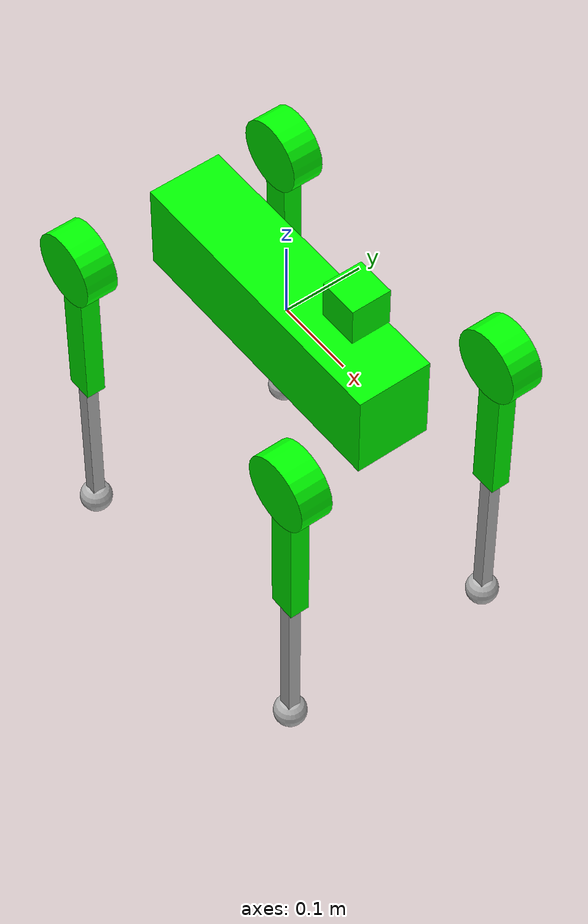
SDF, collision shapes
<?xml version='1.0' encoding='utf-8'?>
<sdf version="1.9">
  <model name="go2_semantic_omni">
    <link name="base">
      <inertial>
        <pose>0.02021629641827912 -1.190286452570884e-19 -0.004924946617263619 0 0 0</pose>
        <mass>7.2870000000000017</mass>
        <inertia>
          <ixx>0.025885214311730229</ixx>
          <ixy>0.00012166</ixy>
          <ixz>0.001393435087171307</ixz>
          <iyy>0.103223624876722</iyy>
          <iyz>-3.1199999999999993e-05</iyz>
          <izz>0.1127458990649917</izz>
        </inertia>
      </inertial>
      <collision name="base_fixed_joint_lump__trunk_collision">
        <pose>0 0 0 0 0 0</pose>
        <geometry>
          <box>
            <size>0.3762 0.0935 0.114</size>
          </box>
        </geometry>
        <surface>
          <contact>
            <ode>
              <kp>1000000</kp>
              <kd>1</kd>
            </ode>
          </contact>
          <friction>
            <ode>
              <mu>0.20000000000000001</mu>
              <mu2>0.20000000000000001</mu2>
            </ode>
          </friction>
        </surface>
      </collision>
      <collision name="base_fixed_joint_lump__imu_link_collision_1">
        <pose>0.12 0 0.125 0 0 0</pose>
        <geometry>
          <box>
            <size>0.05 0.05 0.05</size>
          </box>
        </geometry>
        <surface>
          <contact>
            <ode />
          </contact>
          <friction>
            <ode>
              <mu>0.20000000000000001</mu>
              <mu2>0.20000000000000001</mu2>
            </ode>
          </friction>
        </surface>
      </collision>
      <visual name="base_visual">
        <pose>0 0 0 0 0 0</pose>
        <geometry>
          <box>
            <size>0.001 0.001 0.001</size>
          </box>
        </geometry>
      </visual>
      <visual name="base_fixed_joint_lump__trunk_visual_1">
        <pose>0 0 0 0 0 0</pose>
        <geometry>
          <mesh>
            <scale>1 1 1</scale>
            <uri>model://go2_semantic/meshes/trunk.dae</uri>
          </mesh>
        </geometry>
      </visual>
      <visual name="base_fixed_joint_lump__FL_hip_rotor_visual_2">
        <pose>0.11215 0.04675 0 0 1.570796326794897 0</pose>
        <geometry>
          <cylinder>
            <length>0.02</length>
            <radius>0.035000000000000003</radius>
          </cylinder>
        </geometry>
        <material>
          <diffuse>0 1 0 1</diffuse>
          <ambient>0 1 0 1</ambient>
        </material>
      </visual>
      <visual name="base_fixed_joint_lump__FR_hip_rotor_visual_3">
        <pose>0.11215 -0.04675 0 0 1.570796326794897 0</pose>
        <geometry>
          <cylinder>
            <length>0.02</length>
            <radius>0.035000000000000003</radius>
          </cylinder>
        </geometry>
        <material>
          <diffuse>0 1 0 1</diffuse>
          <ambient>0 1 0 1</ambient>
        </material>
      </visual>
      <visual name="base_fixed_joint_lump__RL_hip_rotor_visual_4">
        <pose>-0.11215 0.04675 0 0 1.570796326794897 0</pose>
        <geometry>
          <cylinder>
            <length>0.02</length>
            <radius>0.035000000000000003</radius>
          </cylinder>
        </geometry>
        <material>
          <diffuse>0 1 0 1</diffuse>
          <ambient>0 1 0 1</ambient>
        </material>
      </visual>
      <visual name="base_fixed_joint_lump__RR_hip_rotor_visual_5">
        <pose>-0.11215 -0.04675 0 0 1.570796326794897 0</pose>
        <geometry>
          <cylinder>
            <length>0.02</length>
            <radius>0.035000000000000003</radius>
          </cylinder>
        </geometry>
        <material>
          <diffuse>0 1 0 1</diffuse>
          <ambient>0 1 0 1</ambient>
        </material>
      </visual>
      <visual name="base_fixed_joint_lump__imu_link_visual_6">
        <pose>0.12 0 0.125 0 0 0</pose>
        <geometry>
          <box>
            <size>0.05 0.05 0.05</size>
          </box>
        </geometry>
        <material>
          <diffuse>0 1 0 1</diffuse>
          <ambient>0 1 0 1</ambient>
        </material>
      </visual>
      <gravity>true</gravity>
      <gravity>true</gravity>
      <sensor name="imu_sensor" type="imu">
        <always_on>true</always_on>
        <update_rate>100</update_rate>
        <visualize>true</visualize>
        <topic>__default_topic__</topic>
        <pose>0.12 0 0.125 0 -0 0</pose>
      </sensor>
      <sensor name="trunk_imu" type="imu">
        <pose>0.12 0 0.125 0 0 0</pose>
        <topic>/trunk_imu</topic>
        <always_on>1</always_on>
        <update_rate>200</update_rate>
        <visualize>false</visualize>
      </sensor>
      <sensor name="rgbd_camera" type="rgbd_camera">
        <pose relative_to="camera_mount">0 0 0 0 0 0</pose>
        <camera>
          <horizontal_fov>1.745329252</horizontal_fov>
          <image>
            <width>480</width>
            <height>270</height>
          </image>
          <clip>
            <near>0.10</near>
            <far>30.0</far>
          </clip>
          <lens>
            <intrinsics>
              <fx>201.384</fx>
              <fy>201.384</fy>
              <cx>240</cx>
              <cy>135</cy>
              <skew>0</skew>
            </intrinsics>
          </lens>
        </camera>
        <always_on>1</always_on>
        <update_rate>10</update_rate>
        <visualize>false</visualize>
        <topic>rgbd_camera</topic>
      </sensor>
      <sensor name="semantic_segmentation_camera" type="segmentation">
        <pose relative_to="camera_mount">0 0 0 0 0 0</pose>
        <topic>semantic</topic>
        <camera>
          <segmentation_type>semantic</segmentation_type>
          <horizontal_fov>1.745329252</horizontal_fov>
          <image>
            <width>480</width>
            <height>270</height>
          </image>
          <clip>
            <near>0.10</near>
            <far>30.0</far>
          </clip>
          <lens>
            <intrinsics>
              <fx>201.384</fx>
              <fy>201.384</fy>
              <cx>240</cx>
              <cy>135</cy>
              <skew>0</skew>
            </intrinsics>
          </lens>
        </camera>
        <always_on>1</always_on>
        <update_rate>10</update_rate>
        <visualize>false</visualize>
      </sensor>
      <sensor name="rgbd_left_camera" type="rgbd_camera">
        <pose relative_to="camera_mount_left">0 0 0 0 0 0</pose>
        <camera>
          <horizontal_fov>1.745329252</horizontal_fov>
          <image>
            <width>480</width>
            <height>270</height>
          </image>
          <clip>
            <near>0.10</near>
            <far>30.0</far>
          </clip>
          <lens>
            <intrinsics>
              <fx>201.384</fx>
              <fy>201.384</fy>
              <cx>240</cx>
              <cy>135</cy>
              <skew>0</skew>
            </intrinsics>
          </lens>
        </camera>
        <always_on>1</always_on>
        <update_rate>10</update_rate>
        <visualize>false</visualize>
        <topic>rgbd_left</topic>
      </sensor>
      <sensor name="semantic_left_camera" type="segmentation">
        <pose relative_to="camera_mount_left">0 0 0 0 0 0</pose>
        <topic>semantic_left</topic>
        <camera>
          <segmentation_type>semantic</segmentation_type>
          <horizontal_fov>1.745329252</horizontal_fov>
          <image>
            <width>480</width>
            <height>270</height>
          </image>
          <clip>
            <near>0.10</near>
            <far>30.0</far>
          </clip>
          <lens>
            <intrinsics>
              <fx>201.384</fx>
              <fy>201.384</fy>
              <cx>240</cx>
              <cy>135</cy>
              <skew>0</skew>
            </intrinsics>
          </lens>
        </camera>
        <always_on>1</always_on>
        <update_rate>10</update_rate>
        <visualize>false</visualize>
      </sensor>
      <sensor name="rgbd_rear_camera" type="rgbd_camera">
        <pose relative_to="camera_mount_rear">0 0 0 0 0 0</pose>
        <camera>
          <horizontal_fov>1.745329252</horizontal_fov>
          <image>
            <width>480</width>
            <height>270</height>
          </image>
          <clip>
            <near>0.10</near>
            <far>30.0</far>
          </clip>
          <lens>
            <intrinsics>
              <fx>201.384</fx>
              <fy>201.384</fy>
              <cx>240</cx>
              <cy>135</cy>
              <skew>0</skew>
            </intrinsics>
          </lens>
        </camera>
        <always_on>1</always_on>
        <update_rate>10</update_rate>
        <visualize>false</visualize>
        <topic>rgbd_rear</topic>
      </sensor>
      <sensor name="semantic_rear_camera" type="segmentation">
        <pose relative_to="camera_mount_rear">0 0 0 0 0 0</pose>
        <topic>semantic_rear</topic>
        <camera>
          <segmentation_type>semantic</segmentation_type>
          <horizontal_fov>1.745329252</horizontal_fov>
          <image>
            <width>480</width>
            <height>270</height>
          </image>
          <clip>
            <near>0.10</near>
            <far>30.0</far>
          </clip>
          <lens>
            <intrinsics>
              <fx>201.384</fx>
              <fy>201.384</fy>
              <cx>240</cx>
              <cy>135</cy>
              <skew>0</skew>
            </intrinsics>
          </lens>
        </camera>
        <always_on>1</always_on>
        <update_rate>10</update_rate>
        <visualize>false</visualize>
      </sensor>
      <sensor name="rgbd_right_camera" type="rgbd_camera">
        <pose relative_to="camera_mount_right">0 0 0 0 0 0</pose>
        <camera>
          <horizontal_fov>1.745329252</horizontal_fov>
          <image>
            <width>480</width>
            <height>270</height>
          </image>
          <clip>
            <near>0.10</near>
            <far>30.0</far>
          </clip>
          <lens>
            <intrinsics>
              <fx>201.384</fx>
              <fy>201.384</fy>
              <cx>240</cx>
              <cy>135</cy>
              <skew>0</skew>
            </intrinsics>
          </lens>
        </camera>
        <always_on>1</always_on>
        <update_rate>10</update_rate>
        <visualize>false</visualize>
        <topic>rgbd_right</topic>
      </sensor>
      <sensor name="semantic_right_camera" type="segmentation">
        <pose relative_to="camera_mount_right">0 0 0 0 0 0</pose>
        <topic>semantic_right</topic>
        <camera>
          <segmentation_type>semantic</segmentation_type>
          <horizontal_fov>1.745329252</horizontal_fov>
          <image>
            <width>480</width>
            <height>270</height>
          </image>
          <clip>
            <near>0.10</near>
            <far>30.0</far>
          </clip>
          <lens>
            <intrinsics>
              <fx>201.384</fx>
              <fy>201.384</fy>
              <cx>240</cx>
              <cy>135</cy>
              <skew>0</skew>
            </intrinsics>
          </lens>
        </camera>
        <always_on>1</always_on>
        <update_rate>10</update_rate>
        <visualize>false</visualize>
      </sensor>
    </link>
    <!-- Single source of truth for both RGB-D and semantic camera extrinsics. -->
    <joint name="FL_hip_joint" type="revolute">
      <pose relative_to="base">0.1934 0.0465 0 0 0 0</pose>
      <parent>base</parent>
      <child>FL_hip</child>
      <axis>
        <xyz>1 0 0</xyz>
        <limit>
          <lower>-1.0471999999999999</lower>
          <upper>1.0471999999999999</upper>
          <effort>23.699999999999999</effort>
          <velocity>30.100000000000001</velocity>
        </limit>
        <dynamics>
          <damping>0.2</damping>
          <friction>0.05</friction>
          <spring_reference>0.1</spring_reference>
          <spring_stiffness>0</spring_stiffness>
        </dynamics>
        <initial_position>0.1</initial_position>
      </axis>
    </joint>
    <link name="FL_hip">
      <pose relative_to="FL_hip_joint">0 0 0 0 0 0</pose>
      <inertial>
        <pose>-0.004773402868318123 0.00169748370273794 -9.281616688396352e-05 0 0 0</pose>
        <mass>0.76700000000000002</mass>
        <inertia>
          <ixx>0.00053999151781062584</ixx>
          <ixy>-2.1220993324641449e-06</ixy>
          <ixz>1.0653925501955671e-06</ixz>
          <iyy>0.00099813696478559337</iyy>
          <iyz>-1.4027352647979141e-06</iyz>
          <izz>0.00065828474786205991</izz>
        </inertia>
      </inertial>
      <collision name="FL_hip_collision">
        <pose>0 0.0955 0 1.570796326794896 0 0</pose>
        <geometry>
          <cylinder>
            <length>0.040000000000000001</length>
            <radius>0.045999999999999999</radius>
          </cylinder>
        </geometry>
        <surface>
          <contact>
            <ode />
          </contact>
          <friction>
            <ode>
              <mu>0.20000000000000001</mu>
              <mu2>0.20000000000000001</mu2>
            </ode>
          </friction>
        </surface>
      </collision>
      <visual name="FL_hip_visual">
        <pose>0 0 0 0 0 0</pose>
        <geometry>
          <mesh>
            <scale>1 1 1</scale>
            <uri>model://go2_semantic/meshes/hip.dae</uri>
          </mesh>
        </geometry>
      </visual>
      <visual name="FL_hip_fixed_joint_lump__FL_thigh_rotor_visual_1">
        <pose>0 -0.00015 0 1.570796326794896 0 0</pose>
        <geometry>
          <cylinder>
            <length>0.02</length>
            <radius>0.035000000000000003</radius>
          </cylinder>
        </geometry>
        <material>
          <diffuse>0 1 0 1</diffuse>
          <ambient>0 1 0 1</ambient>
        </material>
      </visual>
    </link>
    <joint name="FL_thigh_joint" type="revolute">
      <pose relative_to="FL_hip">0 0.0955 0 0 0 0</pose>
      <parent>FL_hip</parent>
      <child>FL_thigh</child>
      <axis>
        <xyz>0 1 0</xyz>
        <limit>
          <lower>-1.5708</lower>
          <upper>3.4906999999999999</upper>
          <effort>23.699999999999999</effort>
          <velocity>30.100000000000001</velocity>
        </limit>
        <dynamics>
          <damping>0.2</damping>
          <friction>0.05</friction>
          <spring_reference>0.8</spring_reference>
          <spring_stiffness>0</spring_stiffness>
        </dynamics>
        <initial_position>0.8</initial_position>
      </axis>
    </joint>
    <link name="FL_thigh">
      <pose relative_to="FL_thigh_joint">0 0 0 0 0 0</pose>
      <inertial>
        <pose>-0.003471780821917808 -0.02302074939564867 -0.03035487510072523 0 0 0</pose>
        <mass>1.2410000000000001</mass>
        <inertia>
          <ixx>0.0059963333412087023</ixx>
          <ixy>9.0305334356164388e-05</ixy>
          <ixz>-0.00029910392372602731</ixz>
          <iyy>0.0060013394099700237</iyy>
          <iyz>0.00083515091803384382</iyz>
          <izz>0.0010991471651674461</izz>
        </inertia>
      </inertial>
      <collision name="FL_thigh_collision">
        <pose>0 0 -0.1065 0 1.570796326794897 0</pose>
        <geometry>
          <box>
            <size>0.213 0.0245 0.034</size>
          </box>
        </geometry>
        <surface>
          <contact>
            <ode>
              <kp>1000000</kp>
              <kd>1</kd>
            </ode>
          </contact>
          <friction>
            <ode>
              <mu>0.20000000000000001</mu>
              <mu2>0.20000000000000001</mu2>
            </ode>
          </friction>
        </surface>
      </collision>
      <visual name="FL_thigh_visual">
        <pose>0 0 0 0 0 0</pose>
        <geometry>
          <mesh>
            <scale>1 1 1</scale>
            <uri>model://go2_semantic/meshes/thigh.dae</uri>
          </mesh>
        </geometry>
      </visual>
      <visual name="FL_thigh_fixed_joint_lump__FL_calf_rotor_visual_1">
        <pose>0 -0.03235 0 1.570796326794896 0 0</pose>
        <geometry>
          <cylinder>
            <length>0.02</length>
            <radius>0.035000000000000003</radius>
          </cylinder>
        </geometry>
        <material>
          <diffuse>0 1 0 1</diffuse>
          <ambient>0 1 0 1</ambient>
        </material>
      </visual>
      <self_collide>true</self_collide>
    </link>
    <joint name="FL_calf_joint" type="revolute">
      <pose relative_to="FL_thigh">0 0 -0.213 0 0 0</pose>
      <parent>FL_thigh</parent>
      <child>FL_calf</child>
      <axis>
        <xyz>0 1 0</xyz>
        <limit>
          <lower>-2.7227000000000001</lower>
          <upper>-0.83775999999999995</upper>
          <effort>35.549999999999997</effort>
          <velocity>20.059999999999999</velocity>
        </limit>
        <dynamics>
          <damping>0.2</damping>
          <friction>0.05</friction>
          <spring_reference>-1.5</spring_reference>
          <spring_stiffness>0</spring_stiffness>
        </dynamics>
        <initial_position>-1.5</initial_position>
      </axis>
    </joint>
    <link name="FL_calf">
      <pose relative_to="FL_calf_joint">0 0 0 0 0 0</pose>
      <inertial>
        <pose>0.003943551401869159 -0.0007016355140186916 -0.1424766355140187 0 0 0</pose>
        <mass>0.214</mass>
        <inertia>
          <ixx>0.001504318428855141</ixx>
          <ixy>5.7069775700934575e-07</ixy>
          <ixz>-5.9880822429906407e-06</ixz>
          <iyy>0.001525574022878506</iyy>
          <iyz>1.240561682242991e-05</iyz>
          <izz>4.3837685378504683e-05</izz>
        </inertia>
      </inertial>
      <collision name="FL_calf_collision">
        <pose>0 0 -0.1065 0 1.570796326794897 0</pose>
        <geometry>
          <box>
            <size>0.213 0.016 0.016</size>
          </box>
        </geometry>
        <surface>
          <contact>
            <ode />
          </contact>
          <friction>
            <ode>
              <mu>0.20000000000000001</mu>
              <mu2>0.20000000000000001</mu2>
            </ode>
          </friction>
        </surface>
      </collision>
      <collision name="FL_calf_fixed_joint_lump__FL_foot_collision_1">
        <pose>0 0 -0.213 0 0 0</pose>
        <geometry>
          <sphere>
            <radius>0.02</radius>
          </sphere>
        </geometry>
        <surface>
          <contact>
            <ode>
              <kp>1000000</kp>
              <kd>1</kd>
            </ode>
          </contact>
          <friction>
            <ode>
              <mu>0.59999999999999998</mu>
              <mu2>0.59999999999999998</mu2>
            </ode>
          </friction>
        </surface>
      </collision>
      <visual name="FL_calf_visual">
        <pose>0 0 0 0 0 0</pose>
        <geometry>
          <mesh>
            <scale>1 1 1</scale>
            <uri>model://go2_semantic/meshes/calf.dae</uri>
          </mesh>
        </geometry>
      </visual>
      <visual name="FL_calf_fixed_joint_lump__FL_foot_visual_1">
        <pose>0 0 -0.213 0 0 0</pose>
        <geometry>
          <sphere>
            <radius>0.01</radius>
          </sphere>
        </geometry>
      </visual>
      <sensor name="FL_foot_contact" type="contact">
        <update_rate>100</update_rate>
        <contact>
          <collision>FL_calf_fixed_joint_lump__FL_foot_collision_1</collision>
          <topic>__default_topic__</topic>
        </contact>
      </sensor>
      <self_collide>true</self_collide>
      <self_collide>true</self_collide>
    </link>
    <joint name="FR_hip_joint" type="revolute">
      <pose relative_to="base">0.1934 -0.0465 0 0 0 0</pose>
      <parent>base</parent>
      <child>FR_hip</child>
      <axis>
        <xyz>1 0 0</xyz>
        <limit>
          <lower>-1.0471999999999999</lower>
          <upper>1.0471999999999999</upper>
          <effort>23.699999999999999</effort>
          <velocity>30.100000000000001</velocity>
        </limit>
        <dynamics>
          <damping>0.2</damping>
          <friction>0.05</friction>
          <spring_reference>-0.1</spring_reference>
          <spring_stiffness>0</spring_stiffness>
        </dynamics>
        <initial_position>-0.1</initial_position>
      </axis>
    </joint>
    <link name="FR_hip">
      <pose relative_to="FR_hip_joint">0 0 0 0 0 0</pose>
      <inertial>
        <pose>-0.004773402868318123 -0.00169748370273794 -9.281616688396352e-05 0 0 0</pose>
        <mass>0.76700000000000002</mass>
        <inertia>
          <ixx>0.00053999151781062584</ixx>
          <ixy>2.1220993324641449e-06</ixy>
          <ixz>1.0653925501955671e-06</ixz>
          <iyy>0.00099813696478559337</iyy>
          <iyz>1.4027352647979141e-06</iyz>
          <izz>0.00065828474786205991</izz>
        </inertia>
      </inertial>
      <collision name="FR_hip_collision">
        <pose>0 -0.0955 0 1.570796326794896 0 0</pose>
        <geometry>
          <cylinder>
            <length>0.040000000000000001</length>
            <radius>0.045999999999999999</radius>
          </cylinder>
        </geometry>
        <surface>
          <contact>
            <ode />
          </contact>
          <friction>
            <ode>
              <mu>0.20000000000000001</mu>
              <mu2>0.20000000000000001</mu2>
            </ode>
          </friction>
        </surface>
      </collision>
      <visual name="FR_hip_visual">
        <pose>0 0 0 3.141592653589793 0 0</pose>
        <geometry>
          <mesh>
            <scale>1 1 1</scale>
            <uri>model://go2_semantic/meshes/hip.dae</uri>
          </mesh>
        </geometry>
      </visual>
      <visual name="FR_hip_fixed_joint_lump__FR_thigh_rotor_visual_1">
        <pose>0 0.00015 0 1.570796326794896 0 0</pose>
        <geometry>
          <cylinder>
            <length>0.02</length>
            <radius>0.035000000000000003</radius>
          </cylinder>
        </geometry>
        <material>
          <diffuse>0 1 0 1</diffuse>
          <ambient>0 1 0 1</ambient>
        </material>
      </visual>
    </link>
    <joint name="FR_thigh_joint" type="revolute">
      <pose relative_to="FR_hip">0 -0.0955 0 0 0 0</pose>
      <parent>FR_hip</parent>
      <child>FR_thigh</child>
      <axis>
        <xyz>0 1 0</xyz>
        <limit>
          <lower>-1.5708</lower>
          <upper>3.4906999999999999</upper>
          <effort>23.699999999999999</effort>
          <velocity>30.100000000000001</velocity>
        </limit>
        <dynamics>
          <damping>0.2</damping>
          <friction>0.05</friction>
          <spring_reference>0.8</spring_reference>
          <spring_stiffness>0</spring_stiffness>
        </dynamics>
        <initial_position>0.8</initial_position>
      </axis>
    </joint>
    <link name="FR_thigh">
      <pose relative_to="FR_thigh_joint">0 0 0 0 0 0</pose>
      <inertial>
        <pose>-0.003471780821917808 0.02302074939564867 -0.03035487510072523 0 0 0</pose>
        <mass>1.2410000000000001</mass>
        <inertia>
          <ixx>0.0059963333412087023</ixx>
          <ixy>-9.0305334356164388e-05</ixy>
          <ixz>-0.00029910392372602731</ixz>
          <iyy>0.0060013394099700237</iyy>
          <iyz>-0.00083515091803384382</iyz>
          <izz>0.0010991471651674461</izz>
        </inertia>
      </inertial>
      <collision name="FR_thigh_collision">
        <pose>0 0 -0.1065 0 1.570796326794897 0</pose>
        <geometry>
          <box>
            <size>0.213 0.0245 0.034</size>
          </box>
        </geometry>
        <surface>
          <contact>
            <ode>
              <kp>1000000</kp>
              <kd>1</kd>
            </ode>
          </contact>
          <friction>
            <ode>
              <mu>0.20000000000000001</mu>
              <mu2>0.20000000000000001</mu2>
            </ode>
          </friction>
        </surface>
      </collision>
      <visual name="FR_thigh_visual">
        <pose>0 0 0 0 0 0</pose>
        <geometry>
          <mesh>
            <scale>1 1 1</scale>
            <uri>model://go2_semantic/meshes/thigh_mirror.dae</uri>
          </mesh>
        </geometry>
      </visual>
      <visual name="FR_thigh_fixed_joint_lump__FR_calf_rotor_visual_1">
        <pose>0 0.03235 0 1.570796326794896 0 0</pose>
        <geometry>
          <cylinder>
            <length>0.02</length>
            <radius>0.035000000000000003</radius>
          </cylinder>
        </geometry>
        <material>
          <diffuse>0 1 0 1</diffuse>
          <ambient>0 1 0 1</ambient>
        </material>
      </visual>
      <self_collide>true</self_collide>
    </link>
    <joint name="FR_calf_joint" type="revolute">
      <pose relative_to="FR_thigh">0 0 -0.213 0 0 0</pose>
      <parent>FR_thigh</parent>
      <child>FR_calf</child>
      <axis>
        <xyz>0 1 0</xyz>
        <limit>
          <lower>-2.7227000000000001</lower>
          <upper>-0.83775999999999995</upper>
          <effort>35.549999999999997</effort>
          <velocity>20.059999999999999</velocity>
        </limit>
        <dynamics>
          <damping>0.2</damping>
          <friction>0.05</friction>
          <spring_reference>-1.5</spring_reference>
          <spring_stiffness>0</spring_stiffness>
        </dynamics>
        <initial_position>-1.5</initial_position>
      </axis>
    </joint>
    <link name="FR_calf">
      <pose relative_to="FR_calf_joint">0 0 0 0 0 0</pose>
      <inertial>
        <pose>0.003943551401869159 -0.0007016355140186916 -0.1424766355140187 0 0 0</pose>
        <mass>0.214</mass>
        <inertia>
          <ixx>0.001504318428855141</ixx>
          <ixy>5.7069775700934575e-07</ixy>
          <ixz>-5.9880822429906407e-06</ixz>
          <iyy>0.001525574022878506</iyy>
          <iyz>1.240561682242991e-05</iyz>
          <izz>4.3837685378504683e-05</izz>
        </inertia>
      </inertial>
      <collision name="FR_calf_collision">
        <pose>0 0 -0.1065 0 1.570796326794897 0</pose>
        <geometry>
          <box>
            <size>0.213 0.016 0.016</size>
          </box>
        </geometry>
        <surface>
          <contact>
            <ode />
          </contact>
          <friction>
            <ode>
              <mu>0.20000000000000001</mu>
              <mu2>0.20000000000000001</mu2>
            </ode>
          </friction>
        </surface>
      </collision>
      <collision name="FR_calf_fixed_joint_lump__FR_foot_collision_1">
        <pose>0 0 -0.213 0 0 0</pose>
        <geometry>
          <sphere>
            <radius>0.02</radius>
          </sphere>
        </geometry>
        <surface>
          <contact>
            <ode>
              <kp>1000000</kp>
              <kd>1</kd>
            </ode>
          </contact>
          <friction>
            <ode>
              <mu>0.59999999999999998</mu>
              <mu2>0.59999999999999998</mu2>
            </ode>
          </friction>
        </surface>
      </collision>
      <visual name="FR_calf_visual">
        <pose>0 0 0 0 0 0</pose>
        <geometry>
          <mesh>
            <scale>1 1 1</scale>
            <uri>model://go2_semantic/meshes/calf.dae</uri>
          </mesh>
        </geometry>
      </visual>
      <visual name="FR_calf_fixed_joint_lump__FR_foot_visual_1">
        <pose>0 0 -0.213 0 0 0</pose>
        <geometry>
          <sphere>
            <radius>0.01</radius>
          </sphere>
        </geometry>
      </visual>
      <sensor name="FR_foot_contact" type="contact">
        <update_rate>100</update_rate>
        <contact>
          <collision>FR_calf_fixed_joint_lump__FR_foot_collision_1</collision>
          <topic>__default_topic__</topic>
        </contact>
      </sensor>
      <self_collide>true</self_collide>
      <self_collide>true</self_collide>
    </link>
    <joint name="RL_hip_joint" type="revolute">
      <pose relative_to="base">-0.1934 0.0465 0 0 0 0</pose>
      <parent>base</parent>
      <child>RL_hip</child>
      <axis>
        <xyz>1 0 0</xyz>
        <limit>
          <lower>-1.0471999999999999</lower>
          <upper>1.0471999999999999</upper>
          <effort>23.699999999999999</effort>
          <velocity>30.100000000000001</velocity>
        </limit>
        <dynamics>
          <damping>0.2</damping>
          <friction>0.05</friction>
          <spring_reference>0.1</spring_reference>
          <spring_stiffness>0</spring_stiffness>
        </dynamics>
        <initial_position>0.1</initial_position>
      </axis>
    </joint>
    <link name="RL_hip">
      <pose relative_to="RL_hip_joint">0 0 0 0 0 0</pose>
      <inertial>
        <pose>0.004773402868318123 0.00169748370273794 -9.281616688396352e-05 0 0 0</pose>
        <mass>0.76700000000000002</mass>
        <inertia>
          <ixx>0.00053999151781062584</ixx>
          <ixy>2.1220993324641449e-06</ixy>
          <ixz>-1.0653925501955671e-06</ixz>
          <iyy>0.00099813696478559337</iyy>
          <iyz>-1.4027352647979141e-06</iyz>
          <izz>0.00065828474786205991</izz>
        </inertia>
      </inertial>
      <collision name="RL_hip_collision">
        <pose>0 0.0955 0 1.570796326794896 0 0</pose>
        <geometry>
          <cylinder>
            <length>0.040000000000000001</length>
            <radius>0.045999999999999999</radius>
          </cylinder>
        </geometry>
        <surface>
          <contact>
            <ode />
          </contact>
          <friction>
            <ode>
              <mu>0.20000000000000001</mu>
              <mu2>0.20000000000000001</mu2>
            </ode>
          </friction>
        </surface>
      </collision>
      <visual name="RL_hip_visual">
        <pose>0 0 0 3.141592653589793 1.224646799147353e-16 3.141592653589793</pose>
        <geometry>
          <mesh>
            <scale>1 1 1</scale>
            <uri>model://go2_semantic/meshes/hip.dae</uri>
          </mesh>
        </geometry>
      </visual>
      <visual name="RL_hip_fixed_joint_lump__RL_thigh_rotor_visual_1">
        <pose>0 -0.00015 0 1.570796326794896 0 0</pose>
        <geometry>
          <cylinder>
            <length>0.02</length>
            <radius>0.035000000000000003</radius>
          </cylinder>
        </geometry>
        <material>
          <diffuse>0 1 0 1</diffuse>
          <ambient>0 1 0 1</ambient>
        </material>
      </visual>
    </link>
    <joint name="RL_thigh_joint" type="revolute">
      <pose relative_to="RL_hip">0 0.0955 0 0 0 0</pose>
      <parent>RL_hip</parent>
      <child>RL_thigh</child>
      <axis>
        <xyz>0 1 0</xyz>
        <limit>
          <lower>-1.5708</lower>
          <upper>3.4906999999999999</upper>
          <effort>23.699999999999999</effort>
          <velocity>30.100000000000001</velocity>
        </limit>
        <dynamics>
          <damping>0.2</damping>
          <friction>0.05</friction>
          <spring_reference>1.0</spring_reference>
          <spring_stiffness>0</spring_stiffness>
        </dynamics>
        <initial_position>1.0</initial_position>
      </axis>
    </joint>
    <link name="RL_thigh">
      <pose relative_to="RL_thigh_joint">0 0 0 0 0 0</pose>
      <inertial>
        <pose>-0.003471780821917808 -0.02302074939564867 -0.03035487510072523 0 0 0</pose>
        <mass>1.2410000000000001</mass>
        <inertia>
          <ixx>0.0059963333412087023</ixx>
          <ixy>9.0305334356164388e-05</ixy>
          <ixz>-0.00029910392372602731</ixz>
          <iyy>0.0060013394099700237</iyy>
          <iyz>0.00083515091803384382</iyz>
          <izz>0.0010991471651674461</izz>
        </inertia>
      </inertial>
      <collision name="RL_thigh_collision">
        <pose>0 0 -0.1065 0 1.570796326794897 0</pose>
        <geometry>
          <box>
            <size>0.213 0.0245 0.034</size>
          </box>
        </geometry>
        <surface>
          <contact>
            <ode>
              <kp>1000000</kp>
              <kd>1</kd>
            </ode>
          </contact>
          <friction>
            <ode>
              <mu>0.20000000000000001</mu>
              <mu2>0.20000000000000001</mu2>
            </ode>
          </friction>
        </surface>
      </collision>
      <visual name="RL_thigh_visual">
        <pose>0 0 0 0 0 0</pose>
        <geometry>
          <mesh>
            <scale>1 1 1</scale>
            <uri>model://go2_semantic/meshes/thigh.dae</uri>
          </mesh>
        </geometry>
      </visual>
      <visual name="RL_thigh_fixed_joint_lump__RL_calf_rotor_visual_1">
        <pose>0 -0.03235 0 1.570796326794896 0 0</pose>
        <geometry>
          <cylinder>
            <length>0.02</length>
            <radius>0.035000000000000003</radius>
          </cylinder>
        </geometry>
        <material>
          <diffuse>0 1 0 1</diffuse>
          <ambient>0 1 0 1</ambient>
        </material>
      </visual>
      <self_collide>true</self_collide>
    </link>
    <joint name="RL_calf_joint" type="revolute">
      <pose relative_to="RL_thigh">0 0 -0.213 0 0 0</pose>
      <parent>RL_thigh</parent>
      <child>RL_calf</child>
      <axis>
        <xyz>0 1 0</xyz>
        <limit>
          <lower>-2.7227000000000001</lower>
          <upper>-0.83775999999999995</upper>
          <effort>35.549999999999997</effort>
          <velocity>20.059999999999999</velocity>
        </limit>
        <dynamics>
          <damping>0.2</damping>
          <friction>0.05</friction>
          <spring_reference>-1.5</spring_reference>
          <spring_stiffness>0</spring_stiffness>
        </dynamics>
        <initial_position>-1.5</initial_position>
      </axis>
    </joint>
    <link name="RL_calf">
      <pose relative_to="RL_calf_joint">0 0 0 0 0 0</pose>
      <inertial>
        <pose>0.003943551401869159 -0.0007016355140186916 -0.1424766355140187 0 0 0</pose>
        <mass>0.214</mass>
        <inertia>
          <ixx>0.001504318428855141</ixx>
          <ixy>5.7069775700934575e-07</ixy>
          <ixz>-5.9880822429906407e-06</ixz>
          <iyy>0.001525574022878506</iyy>
          <iyz>1.240561682242991e-05</iyz>
          <izz>4.3837685378504683e-05</izz>
        </inertia>
      </inertial>
      <collision name="RL_calf_collision">
        <pose>0 0 -0.1065 0 1.570796326794897 0</pose>
        <geometry>
          <box>
            <size>0.213 0.016 0.016</size>
          </box>
        </geometry>
        <surface>
          <contact>
            <ode />
          </contact>
          <friction>
            <ode>
              <mu>0.20000000000000001</mu>
              <mu2>0.20000000000000001</mu2>
            </ode>
          </friction>
        </surface>
      </collision>
      <collision name="RL_calf_fixed_joint_lump__RL_foot_collision_1">
        <pose>0 0 -0.213 0 0 0</pose>
        <geometry>
          <sphere>
            <radius>0.02</radius>
          </sphere>
        </geometry>
        <surface>
          <contact>
            <ode>
              <kp>1000000</kp>
              <kd>1</kd>
            </ode>
          </contact>
          <friction>
            <ode>
              <mu>0.59999999999999998</mu>
              <mu2>0.59999999999999998</mu2>
            </ode>
          </friction>
        </surface>
      </collision>
      <visual name="RL_calf_visual">
        <pose>0 0 0 0 0 0</pose>
        <geometry>
          <mesh>
            <scale>1 1 1</scale>
            <uri>model://go2_semantic/meshes/calf.dae</uri>
          </mesh>
        </geometry>
      </visual>
      <visual name="RL_calf_fixed_joint_lump__RL_foot_visual_1">
        <pose>0 0 -0.213 0 0 0</pose>
        <geometry>
          <sphere>
            <radius>0.01</radius>
          </sphere>
        </geometry>
      </visual>
      <sensor name="RL_foot_contact" type="contact">
        <update_rate>100</update_rate>
        <contact>
          <collision>RL_calf_fixed_joint_lump__RL_foot_collision_1</collision>
          <topic>__default_topic__</topic>
        </contact>
      </sensor>
      <self_collide>true</self_collide>
      <self_collide>true</self_collide>
    </link>
    <joint name="RR_hip_joint" type="revolute">
      <pose relative_to="base">-0.1934 -0.0465 0 0 0 0</pose>
      <parent>base</parent>
      <child>RR_hip</child>
      <axis>
        <xyz>1 0 0</xyz>
        <limit>
          <lower>-1.0471999999999999</lower>
          <upper>1.0471999999999999</upper>
          <effort>23.699999999999999</effort>
          <velocity>30.100000000000001</velocity>
        </limit>
        <dynamics>
          <damping>0.2</damping>
          <friction>0.05</friction>
          <spring_reference>-0.1</spring_reference>
          <spring_stiffness>0</spring_stiffness>
        </dynamics>
        <initial_position>-0.1</initial_position>
      </axis>
    </joint>
    <link name="RR_hip">
      <pose relative_to="RR_hip_joint">0 0 0 0 0 0</pose>
      <inertial>
        <pose>0.004773402868318123 -0.00169748370273794 -9.281616688396352e-05 0 0 0</pose>
        <mass>0.76700000000000002</mass>
        <inertia>
          <ixx>0.00053999151781062584</ixx>
          <ixy>-2.1220993324641449e-06</ixy>
          <ixz>-1.0653925501955671e-06</ixz>
          <iyy>0.00099813696478559337</iyy>
          <iyz>1.4027352647979141e-06</iyz>
          <izz>0.00065828474786205991</izz>
        </inertia>
      </inertial>
      <collision name="RR_hip_collision">
        <pose>0 -0.0955 0 1.570796326794896 0 0</pose>
        <geometry>
          <cylinder>
            <length>0.040000000000000001</length>
            <radius>0.045999999999999999</radius>
          </cylinder>
        </geometry>
        <surface>
          <contact>
            <ode />
          </contact>
          <friction>
            <ode>
              <mu>0.20000000000000001</mu>
              <mu2>0.20000000000000001</mu2>
            </ode>
          </friction>
        </surface>
      </collision>
      <visual name="RR_hip_visual">
        <pose>0 0 0 -1.224646799147353e-16 1.224646799147353e-16 3.141592653589793</pose>
        <geometry>
          <mesh>
            <scale>1 1 1</scale>
            <uri>model://go2_semantic/meshes/hip.dae</uri>
          </mesh>
        </geometry>
      </visual>
      <visual name="RR_hip_fixed_joint_lump__RR_thigh_rotor_visual_1">
        <pose>0 0.00015 0 1.570796326794896 0 0</pose>
        <geometry>
          <cylinder>
            <length>0.02</length>
            <radius>0.035000000000000003</radius>
          </cylinder>
        </geometry>
        <material>
          <diffuse>0 1 0 1</diffuse>
          <ambient>0 1 0 1</ambient>
        </material>
      </visual>
    </link>
    <joint name="RR_thigh_joint" type="revolute">
      <pose relative_to="RR_hip">0 -0.0955 0 0 0 0</pose>
      <parent>RR_hip</parent>
      <child>RR_thigh</child>
      <axis>
        <xyz>0 1 0</xyz>
        <limit>
          <lower>-1.5708</lower>
          <upper>3.4906999999999999</upper>
          <effort>23.699999999999999</effort>
          <velocity>30.100000000000001</velocity>
        </limit>
        <dynamics>
          <damping>0.2</damping>
          <friction>0.05</friction>
          <spring_reference>1.0</spring_reference>
          <spring_stiffness>0</spring_stiffness>
        </dynamics>
        <initial_position>1.0</initial_position>
      </axis>
    </joint>
    <link name="RR_thigh">
      <pose relative_to="RR_thigh_joint">0 0 0 0 0 0</pose>
      <inertial>
        <pose>-0.003471780821917808 0.02302074939564867 -0.03035487510072523 0 0 0</pose>
        <mass>1.2410000000000001</mass>
        <inertia>
          <ixx>0.0059963333412087023</ixx>
          <ixy>-9.0305334356164388e-05</ixy>
          <ixz>-0.00029910392372602731</ixz>
          <iyy>0.0060013394099700237</iyy>
          <iyz>-0.00083515091803384382</iyz>
          <izz>0.0010991471651674461</izz>
        </inertia>
      </inertial>
      <collision name="RR_thigh_collision">
        <pose>0 0 -0.1065 0 1.570796326794897 0</pose>
        <geometry>
          <box>
            <size>0.213 0.0245 0.034</size>
          </box>
        </geometry>
        <surface>
          <contact>
            <ode>
              <kp>1000000</kp>
              <kd>1</kd>
            </ode>
          </contact>
          <friction>
            <ode>
              <mu>0.20000000000000001</mu>
              <mu2>0.20000000000000001</mu2>
            </ode>
          </friction>
        </surface>
      </collision>
      <visual name="RR_thigh_visual">
        <pose>0 0 0 0 0 0</pose>
        <geometry>
          <mesh>
            <scale>1 1 1</scale>
            <uri>model://go2_semantic/meshes/thigh_mirror.dae</uri>
          </mesh>
        </geometry>
      </visual>
      <visual name="RR_thigh_fixed_joint_lump__RR_calf_rotor_visual_1">
        <pose>0 0.03235 0 1.570796326794896 0 0</pose>
        <geometry>
          <cylinder>
            <length>0.02</length>
            <radius>0.035000000000000003</radius>
          </cylinder>
        </geometry>
        <material>
          <diffuse>0 1 0 1</diffuse>
          <ambient>0 1 0 1</ambient>
        </material>
      </visual>
      <self_collide>true</self_collide>
    </link>
    <joint name="RR_calf_joint" type="revolute">
      <pose relative_to="RR_thigh">0 0 -0.213 0 0 0</pose>
      <parent>RR_thigh</parent>
      <child>RR_calf</child>
      <axis>
        <xyz>0 1 0</xyz>
        <limit>
          <lower>-2.7227000000000001</lower>
          <upper>-0.83775999999999995</upper>
          <effort>35.549999999999997</effort>
          <velocity>20.059999999999999</velocity>
        </limit>
        <dynamics>
          <damping>0.2</damping>
          <friction>0.05</friction>
          <spring_reference>-1.5</spring_reference>
          <spring_stiffness>0</spring_stiffness>
        </dynamics>
        <initial_position>-1.5</initial_position>
      </axis>
    </joint>
    <link name="RR_calf">
      <pose relative_to="RR_calf_joint">0 0 0 0 0 0</pose>
      <inertial>
        <pose>0.003943551401869159 -0.0007016355140186916 -0.1424766355140187 0 0 0</pose>
        <mass>0.214</mass>
        <inertia>
          <ixx>0.001504318428855141</ixx>
          <ixy>5.7069775700934575e-07</ixy>
          <ixz>-5.9880822429906407e-06</ixz>
          <iyy>0.001525574022878506</iyy>
          <iyz>1.240561682242991e-05</iyz>
          <izz>4.3837685378504683e-05</izz>
        </inertia>
      </inertial>
      <collision name="RR_calf_collision">
        <pose>0 0 -0.1065 0 1.570796326794897 0</pose>
        <geometry>
          <box>
            <size>0.213 0.016 0.016</size>
          </box>
        </geometry>
        <surface>
          <contact>
            <ode />
          </contact>
          <friction>
            <ode>
              <mu>0.20000000000000001</mu>
              <mu2>0.20000000000000001</mu2>
            </ode>
          </friction>
        </surface>
      </collision>
      <collision name="RR_calf_fixed_joint_lump__RR_foot_collision_1">
        <pose>0 0 -0.213 0 0 0</pose>
        <geometry>
          <sphere>
            <radius>0.02</radius>
          </sphere>
        </geometry>
        <surface>
          <contact>
            <ode>
              <kp>1000000</kp>
              <kd>1</kd>
            </ode>
          </contact>
          <friction>
            <ode>
              <mu>0.59999999999999998</mu>
              <mu2>0.59999999999999998</mu2>
            </ode>
          </friction>
        </surface>
      </collision>
      <visual name="RR_calf_visual">
        <pose>0 0 0 0 0 0</pose>
        <geometry>
          <mesh>
            <scale>1 1 1</scale>
            <uri>model://go2_semantic/meshes/calf.dae</uri>
          </mesh>
        </geometry>
      </visual>
      <visual name="RR_calf_fixed_joint_lump__RR_foot_visual_1">
        <pose>0 0 -0.213 0 0 0</pose>
        <geometry>
          <sphere>
            <radius>0.01</radius>
          </sphere>
        </geometry>
      </visual>
      <sensor name="RR_foot_contact" type="contact">
        <update_rate>100</update_rate>
        <contact>
          <collision>RR_calf_fixed_joint_lump__RR_foot_collision_1</collision>
          <topic>__default_topic__</topic>
        </contact>
      </sensor>
      <self_collide>true</self_collide>
      <self_collide>true</self_collide>
    </link>
    <frame name="FL_hip_rotor_joint" attached_to="trunk">
      <pose>0.11215 0.04675 0 0 -0 0</pose>
    </frame>
    <frame name="FL_hip_rotor" attached_to="FL_hip_rotor_joint" />
    <frame name="FR_hip_rotor_joint" attached_to="trunk">
      <pose>0.11215 -0.04675 0 0 -0 0</pose>
    </frame>
    <frame name="FR_hip_rotor" attached_to="FR_hip_rotor_joint" />
    <frame name="RL_hip_rotor_joint" attached_to="trunk">
      <pose>-0.11215 0.04675 0 0 -0 0</pose>
    </frame>
    <frame name="RL_hip_rotor" attached_to="RL_hip_rotor_joint" />
    <frame name="RR_hip_rotor_joint" attached_to="trunk">
      <pose>-0.11215 -0.04675 0 0 -0 0</pose>
    </frame>
    <frame name="RR_hip_rotor" attached_to="RR_hip_rotor_joint" />
    <frame name="imu_joint" attached_to="trunk">
      <pose>0.12 0 0.125 0 -0 0</pose>
    </frame>
    <frame name="imu_link" attached_to="imu_joint" />
    <frame name="floating_base" attached_to="base">
      <pose>0 0 0 0 -0 0</pose>
    </frame>
    <frame name="trunk" attached_to="floating_base" />
    <frame name="FL_thigh_rotor_joint" attached_to="FL_hip">
      <pose>0 -0.00015 0 0 -0 0</pose>
    </frame>
    <frame name="FL_thigh_rotor" attached_to="FL_thigh_rotor_joint" />
    <frame name="FL_calf_rotor_joint" attached_to="FL_thigh">
      <pose>0 -0.03235 0 0 -0 0</pose>
    </frame>
    <frame name="FL_calf_rotor" attached_to="FL_calf_rotor_joint" />
    <frame name="FL_foot_fixed" attached_to="FL_calf">
      <pose>0 0 -0.213 0 -0 0</pose>
    </frame>
    <frame name="FL_foot" attached_to="FL_foot_fixed" />
    <frame name="FR_thigh_rotor_joint" attached_to="FR_hip">
      <pose>0 0.00015 0 0 -0 0</pose>
    </frame>
    <frame name="FR_thigh_rotor" attached_to="FR_thigh_rotor_joint" />
    <frame name="FR_calf_rotor_joint" attached_to="FR_thigh">
      <pose>0 0.03235 0 0 -0 0</pose>
    </frame>
    <frame name="FR_calf_rotor" attached_to="FR_calf_rotor_joint" />
    <frame name="FR_foot_fixed" attached_to="FR_calf">
      <pose>0 0 -0.213 0 -0 0</pose>
    </frame>
    <frame name="FR_foot" attached_to="FR_foot_fixed" />
    <frame name="RL_thigh_rotor_joint" attached_to="RL_hip">
      <pose>0 -0.00015 0 0 -0 0</pose>
    </frame>
    <frame name="RL_thigh_rotor" attached_to="RL_thigh_rotor_joint" />
    <frame name="RL_calf_rotor_joint" attached_to="RL_thigh">
      <pose>0 -0.03235 0 0 -0 0</pose>
    </frame>
    <frame name="RL_calf_rotor" attached_to="RL_calf_rotor_joint" />
    <frame name="RL_foot_fixed" attached_to="RL_calf">
      <pose>0 0 -0.213 0 -0 0</pose>
    </frame>
    <frame name="RL_foot" attached_to="RL_foot_fixed" />
    <frame name="RR_thigh_rotor_joint" attached_to="RR_hip">
      <pose>0 0.00015 0 0 -0 0</pose>
    </frame>
    <frame name="RR_thigh_rotor" attached_to="RR_thigh_rotor_joint" />
    <frame name="RR_calf_rotor_joint" attached_to="RR_thigh">
      <pose>0 0.03235 0 0 -0 0</pose>
    </frame>
    <frame name="RR_calf_rotor" attached_to="RR_calf_rotor_joint" />
    <frame name="RR_foot_fixed" attached_to="RR_calf">
      <pose>0 0 -0.213 0 -0 0</pose>
    </frame>
    <frame name="RR_foot" attached_to="RR_foot_fixed" />
    <plugin filename="libgo2_effort_pd_system.so" name="semantic_segmentation_go2::Go2EffortPdSystem">
      <joint>
        <name>FL_hip_joint</name>
        <initial_position>0.1</initial_position>
        <kp>40.0</kp>
        <kd>1.0</kd>
        <effort_limit>23.7</effort_limit>
      </joint>
      <joint>
        <name>FL_thigh_joint</name>
        <initial_position>0.8</initial_position>
        <kp>40.0</kp>
        <kd>1.0</kd>
        <effort_limit>23.7</effort_limit>
      </joint>
      <joint>
        <name>FL_calf_joint</name>
        <initial_position>-1.5</initial_position>
        <kp>40.0</kp>
        <kd>1.0</kd>
        <effort_limit>35.55</effort_limit>
      </joint>
      <joint>
        <name>FR_hip_joint</name>
        <initial_position>-0.1</initial_position>
        <kp>40.0</kp>
        <kd>1.0</kd>
        <effort_limit>23.7</effort_limit>
      </joint>
      <joint>
        <name>FR_thigh_joint</name>
        <initial_position>0.8</initial_position>
        <kp>40.0</kp>
        <kd>1.0</kd>
        <effort_limit>23.7</effort_limit>
      </joint>
      <joint>
        <name>FR_calf_joint</name>
        <initial_position>-1.5</initial_position>
        <kp>40.0</kp>
        <kd>1.0</kd>
        <effort_limit>35.55</effort_limit>
      </joint>
      <joint>
        <name>RL_hip_joint</name>
        <initial_position>0.1</initial_position>
        <kp>40.0</kp>
        <kd>1.0</kd>
        <effort_limit>23.7</effort_limit>
      </joint>
      <joint>
        <name>RL_thigh_joint</name>
        <initial_position>1.0</initial_position>
        <kp>40.0</kp>
        <kd>1.0</kd>
        <effort_limit>23.7</effort_limit>
      </joint>
      <joint>
        <name>RL_calf_joint</name>
        <initial_position>-1.5</initial_position>
        <kp>40.0</kp>
        <kd>1.0</kd>
        <effort_limit>35.55</effort_limit>
      </joint>
      <joint>
        <name>RR_hip_joint</name>
        <initial_position>-0.1</initial_position>
        <kp>40.0</kp>
        <kd>1.0</kd>
        <effort_limit>23.7</effort_limit>
      </joint>
      <joint>
        <name>RR_thigh_joint</name>
        <initial_position>1.0</initial_position>
        <kp>40.0</kp>
        <kd>1.0</kd>
        <effort_limit>23.7</effort_limit>
      </joint>
      <joint>
        <name>RR_calf_joint</name>
        <initial_position>-1.5</initial_position>
        <kp>40.0</kp>
        <kd>1.0</kd>
        <effort_limit>35.55</effort_limit>
      </joint>
    </plugin>
    <plugin filename="ignition-gazebo-joint-state-publisher-system" name="ignition::gazebo::systems::JointStatePublisher">
      <joint_name>FL_hip_joint</joint_name>
      <joint_name>FL_thigh_joint</joint_name>
      <joint_name>FL_calf_joint</joint_name>
      <joint_name>FR_hip_joint</joint_name>
      <joint_name>FR_thigh_joint</joint_name>
      <joint_name>FR_calf_joint</joint_name>
      <joint_name>RL_hip_joint</joint_name>
      <joint_name>RL_thigh_joint</joint_name>
      <joint_name>RL_calf_joint</joint_name>
      <joint_name>RR_hip_joint</joint_name>
      <joint_name>RR_thigh_joint</joint_name>
      <joint_name>RR_calf_joint</joint_name>
    </plugin>
    <plugin filename="ignition-gazebo-pose-publisher-system" name="ignition::gazebo::systems::PosePublisher">
      <publish_link_pose>false</publish_link_pose>
      <publish_sensor_pose>false</publish_sensor_pose>
      <publish_collision_pose>false</publish_collision_pose>
      <publish_visual_pose>false</publish_visual_pose>
      <publish_nested_model_pose>true</publish_nested_model_pose>
      <use_pose_vector_msg>false</use_pose_vector_msg>
    </plugin>
    <frame name="camera_mount" attached_to="base">
      <pose relative_to="base">0 0 0.4 0 0.30 0.000000000000</pose>
    </frame>
    <frame name="camera_mount_left" attached_to="base">
      <pose relative_to="base">0 0 0.4 0 0.30 1.570796326795</pose>
    </frame>
    <frame name="camera_mount_rear" attached_to="base">
      <pose relative_to="base">0 0 0.4 0 0.30 3.141592653590</pose>
    </frame>
    <frame name="camera_mount_right" attached_to="base">
      <pose relative_to="base">0 0 0.4 0 0.30 -1.570796326795</pose>
    </frame>
  </model>
</sdf>
